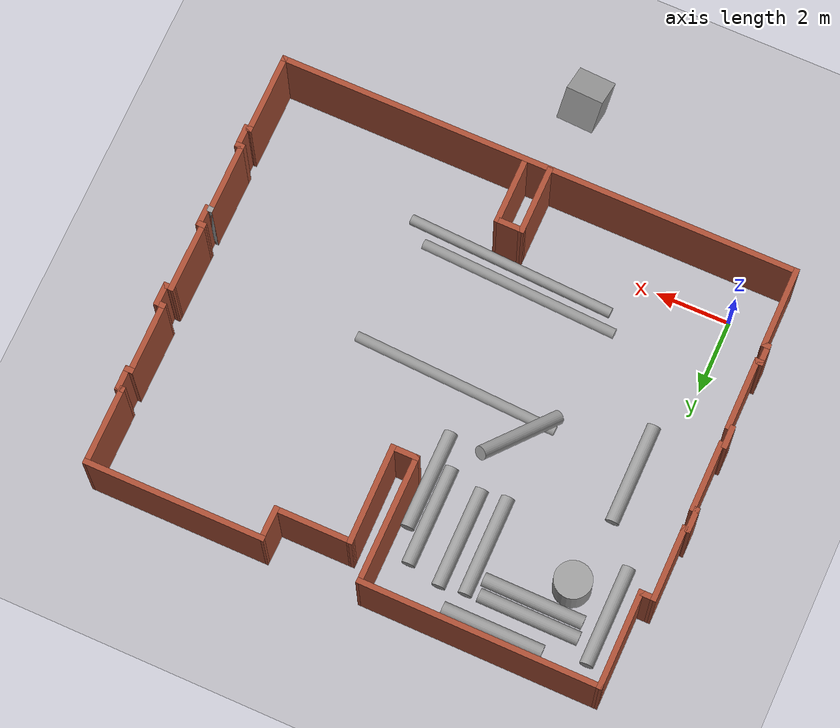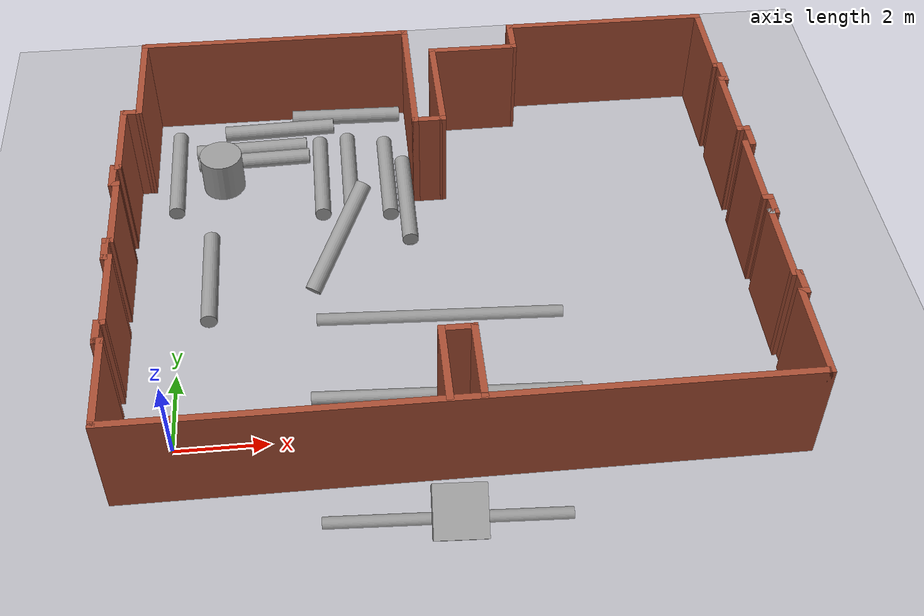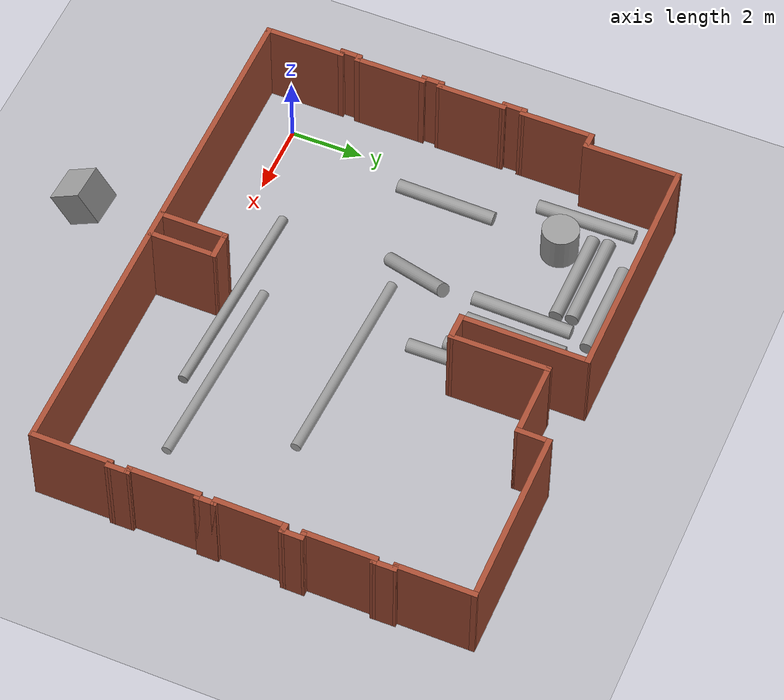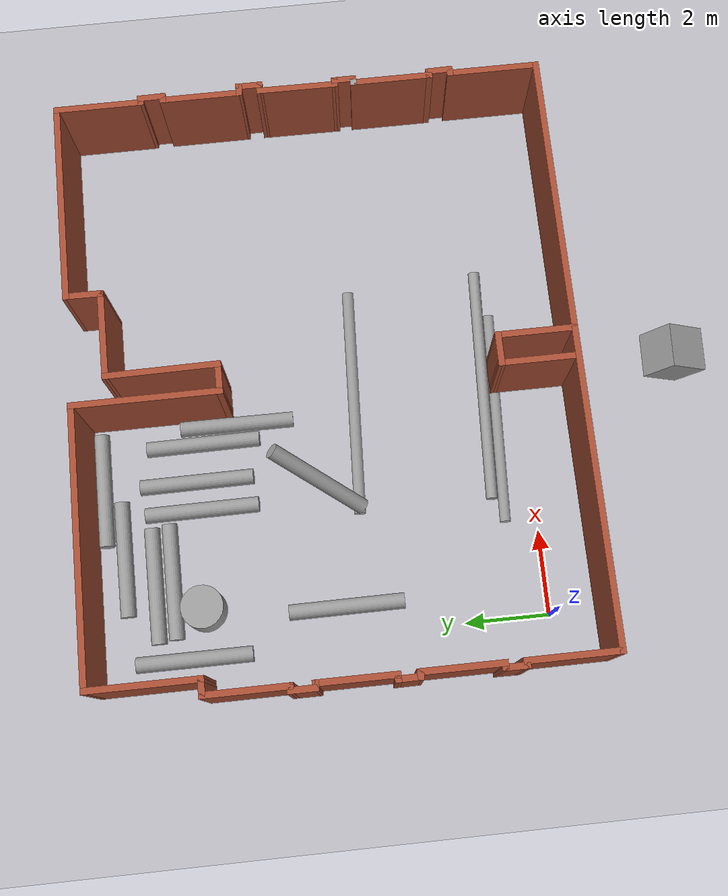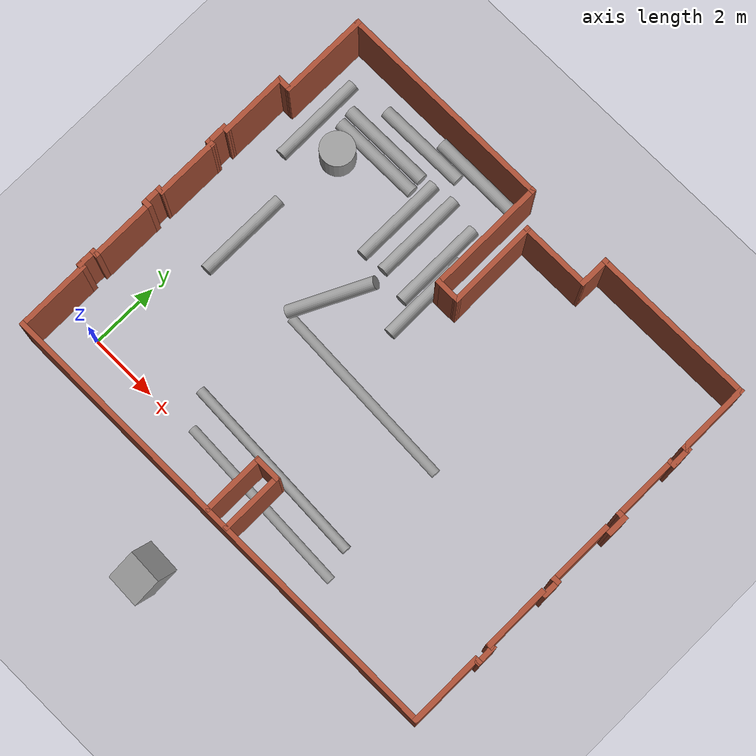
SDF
<sdf version="1.6">
 <world name="default">
  <light name="sun" type="directional">
   <pose>0 0 10 0 -0 0</pose>
   <diffuse>0.8 0.8 0.8 1</diffuse>
   <specular>0.2 0.2 0.2 1</specular>
   <attenuation>
    <range>1000</range>
    <constant>0.9</constant>
    <linear>0.01</linear>
    <quadratic>0.001</quadratic>
   </attenuation>
   <direction>0.5 0.1 -0.9</direction>
  </light>
  <scene><ambient>0.4 0.4 0.4 1</ambient><background>0.7 0.7 0.7 1</background><shadows>1</shadows></scene>
  <physics name="default_physics" default="0" type="ode">
   <max_step_size>0.01</max_step_size>
   <real_time_factor>1</real_time_factor>
   <real_time_update_rate>100</real_time_update_rate>
  </physics>
  <model name="ground_plane_0">
   <static>1</static>
   <link name="link">
    <collision name="collision">
     <geometry><plane><normal>0 0 1</normal><size>100 100</size></plane></geometry>
     <surface><friction><ode><mu>100</mu><mu2>50</mu2></ode></friction></surface>
    </collision>
    <visual name="visual">
     <cast_shadows>0</cast_shadows>
     <geometry><plane><normal>0 0 1</normal><size>100 100</size></plane></geometry>
     <material>
      <script><uri>file://media/materials/scripts/gazebo.material</uri><name>Gazebo/Grey</name></script>
     </material>
    </visual>
    <velocity_decay><linear>0</linear><angular>0</angular></velocity_decay>
   </link>
   <pose>0.497681 0 0 0 -0 0</pose>
  </model>
  <gravity>0 0 -9.8</gravity>
  <magnetic_field>6e-06 2.3e-05 -4.2e-05</magnetic_field>
  <atmosphere type="adiabatic"/>
  <spherical_coordinates>
   <surface_model>EARTH_WGS84</surface_model>
   <latitude_deg>0</latitude_deg>
   <longitude_deg>0</longitude_deg>
   <elevation>0</elevation>
   <heading_deg>0</heading_deg>
  </spherical_coordinates>
  <model name="Arsenal">
   <pose>5.95891 4.69363 0 0 -0 0</pose>
   <link name="Wall_101">
    <collision name="Wall_101_Collision">
     <geometry><box><size>0.310737 0.15 2.5</size></box></geometry>
     <pose>0 0 1.25 0 -0 0</pose>
    </collision>
    <visual name="Wall_101_Visual">
     <pose>0 0 1.25 0 -0 0</pose>
     <geometry><box><size>0.310737 0.15 2.5</size></box></geometry>
     <material>
      <script><uri>file://media/materials/scripts/gazebo.material</uri><name>Gazebo/Bricks</name></script>
      <ambient>1 1 1 1</ambient>
     </material>
     <meta><layer>0</layer></meta>
    </visual>
    <pose>7.10119 1.39533 0 0 0 -0.032025</pose>
   </link>
   <link name="Wall_103">
    <collision name="Wall_103_Collision">
     <geometry><box><size>0.30967 0.15 2.5</size></box></geometry>
     <pose>0 0 1.25 0 -0 0</pose>
    </collision>
    <visual name="Wall_103_Visual">
     <pose>0 0 1.25 0 -0 0</pose>
     <geometry><box><size>0.30967 0.15 2.5</size></box></geometry>
     <material>
      <script><uri>file://media/materials/scripts/gazebo.material</uri><name>Gazebo/Bricks</name></script>
      <ambient>1 1 1 1</ambient>
     </material>
     <meta><layer>0</layer></meta>
    </visual>
    <pose>7.10169 0.894256 0 0 0 -0.018748</pose>
   </link>
   <link name="Wall_105">
    <collision name="Wall_105_Collision">
     <geometry><box><size>0.25 0.15 2.5</size></box></geometry>
     <pose>0 0 1.25 0 -0 0</pose>
    </collision>
    <visual name="Wall_105_Visual">
     <pose>0 0 1.25 0 -0 0</pose>
     <geometry><box><size>0.25 0.15 2.5</size></box></geometry>
     <material>
      <script><uri>file://media/materials/scripts/gazebo.material</uri><name>Gazebo/Bricks</name></script>
      <ambient>1 1 1 1</ambient>
     </material>
     <meta><layer>0</layer></meta>
    </visual>
    <pose>7.0596 -0.929033 0 0 -0 0</pose>
   </link>
   <link name="Wall_109">
    <collision name="Wall_109_Collision">
     <geometry><box><size>0.25 0.15 2.5</size></box></geometry>
     <pose>0 0 1.25 0 -0 0</pose>
    </collision>
    <visual name="Wall_109_Visual">
     <pose>0 0 1.25 0 -0 0</pose>
     <geometry><box><size>0.25 0.15 2.5</size></box></geometry>
     <material>
      <script><uri>file://media/materials/scripts/gazebo.material</uri><name>Gazebo/Bricks</name></script>
      <ambient>1 1 1 1</ambient>
     </material>
     <meta><layer>0</layer></meta>
    </visual>
    <pose>7.0596 -3.23382 0 0 -0 0</pose>
   </link>
   <link name="Wall_117">
    <collision name="Wall_117_Collision">
     <geometry><box><size>0.15 0.15 2.5</size></box></geometry>
     <pose>0 0 1.25 0 -0 0</pose>
    </collision>
    <visual name="Wall_117_Visual">
     <pose>0 0 1.25 0 -0 0</pose>
     <geometry><box><size>0.15 0.15 2.5</size></box></geometry>
     <material>
      <script><uri>file://media/materials/scripts/gazebo.material</uri><name>Gazebo/Grey</name></script>
      <ambient>1 1 1 1</ambient>
     </material>
     <meta><layer>0</layer></meta>
    </visual>
    <pose>7.0096 -1.38382 0 0 -0 0</pose>
   </link>
   <link name="Wall_126">
    <collision name="Wall_126_Collision">
     <geometry><box><size>0.65 0.15 2.5</size></box></geometry>
     <pose>0 0 1.25 0 -0 0</pose>
    </collision>
    <visual name="Wall_126_Visual">
     <pose>0 0 1.25 0 -0 0</pose>
     <geometry><box><size>0.65 0.15 2.5</size></box></geometry>
     <material>
      <script><uri>file://media/materials/scripts/gazebo.material</uri><name>Gazebo/Bricks</name></script>
      <ambient>1 1 1 1</ambient>
     </material>
     <meta><layer>0</layer></meta>
    </visual>
    <pose>7.18169 1.14276 0 0 -0 1.5708</pose>
   </link>
   <link name="Wall_133">
    <collision name="Wall_133_Collision">
     <geometry><box><size>0.681888 0.15 2.5</size></box></geometry>
     <pose>0 0 1.25 0 -0 0</pose>
    </collision>
    <visual name="Wall_133_Visual">
     <pose>0 0 1.25 0 -0 0</pose>
     <geometry><box><size>0.681888 0.15 2.5</size></box></geometry>
     <material>
      <script><uri>file://media/materials/scripts/gazebo.material</uri><name>Gazebo/Bricks</name></script>
      <ambient>1 1 1 1</ambient>
     </material>
     <meta><layer>0</layer></meta>
    </visual>
    <pose>7.11719 3.51383 0 0 0 -1.55766</pose>
   </link>
   <link name="Wall_136">
    <collision name="Wall_136_Collision">
     <geometry><box><size>2 0.15 2.5</size></box></geometry>
     <pose>0 0 1.25 0 -0 0</pose>
    </collision>
    <visual name="Wall_136_Visual">
     <pose>0 0 1.25 0 -0 0</pose>
     <geometry><box><size>2 0.15 2.5</size></box></geometry>
     <material>
      <script><uri>file://media/materials/scripts/gazebo.material</uri><name>Gazebo/Bricks</name></script>
      <ambient>1 1 1 1</ambient>
     </material>
     <meta><layer>0</layer></meta>
    </visual>
    <pose>7.0096 -2.30882 0 0 -0 1.5708</pose>
   </link>
   <link name="Wall_137">
    <collision name="Wall_137_Collision">
     <geometry><box><size>0.15 0.15 2.5</size></box></geometry>
     <pose>0 0 1.25 0 -0 0</pose>
    </collision>
    <visual name="Wall_137_Visual">
     <pose>0 0 1.25 0 -0 0</pose>
     <geometry><box><size>0.15 0.15 2.5</size></box></geometry>
     <material>
      <script><uri>file://media/materials/scripts/gazebo.material</uri><name>Gazebo/Grey</name></script>
      <ambient>1 1 1 1</ambient>
     </material>
     <meta><layer>0</layer></meta>
    </visual>
    <pose>7.0096 -1.38382 0 0 -0 0</pose>
   </link>
   <link name="Wall_139">
    <collision name="Wall_139_Collision">
     <geometry><box><size>0.25 0.15 2.5</size></box></geometry>
     <pose>0 0 1.25 0 -0 0</pose>
    </collision>
    <visual name="Wall_139_Visual">
     <pose>0 0 1.25 0 -0 0</pose>
     <geometry><box><size>0.25 0.15 2.5</size></box></geometry>
     <material>
      <script><uri>file://media/materials/scripts/gazebo.material</uri><name>Gazebo/Bricks</name></script>
      <ambient>1 1 1 1</ambient>
     </material>
     <meta><layer>0</layer></meta>
    </visual>
    <pose>7.0596 -1.38382 0 0 -0 0</pose>
   </link>
   <link name="Wall_140">
    <collision name="Wall_140_Collision">
     <geometry><box><size>0.604786 0.15 2.5</size></box></geometry>
     <pose>0 0 1.25 0 -0 0</pose>
    </collision>
    <visual name="Wall_140_Visual">
     <pose>0 0 1.25 0 -0 0</pose>
     <geometry><box><size>0.604786 0.15 2.5</size></box></geometry>
     <material>
      <script><uri>file://media/materials/scripts/gazebo.material</uri><name>Gazebo/Bricks</name></script>
      <ambient>1 1 1 1</ambient>
     </material>
     <meta><layer>0</layer></meta>
    </visual>
    <pose>7.1096 -1.15643 0 0 -0 1.5708</pose>
   </link>
   <link name="Wall_144">
    <collision name="Wall_144_Collision">
     <geometry><box><size>0.25 0.15 2.5</size></box></geometry>
     <pose>0 0 1.25 0 -0 0</pose>
    </collision>
    <visual name="Wall_144_Visual">
     <pose>0 0 1.25 0 -0 0</pose>
     <geometry><box><size>0.25 0.15 2.5</size></box></geometry>
     <material>
      <script><uri>file://media/materials/scripts/gazebo.material</uri><name>Gazebo/Bricks</name></script>
      <ambient>1 1 1 1</ambient>
     </material>
     <meta><layer>0</layer></meta>
    </visual>
    <pose>7.06686 -3.74301 0 0 -0 0</pose>
   </link>
   <link name="Wall_145">
    <collision name="Wall_145_Collision">
     <geometry><box><size>0.659247 0.15 2.5</size></box></geometry>
     <pose>0 0 1.25 0 -0 0</pose>
    </collision>
    <visual name="Wall_145_Visual">
     <pose>0 0 1.25 0 -0 0</pose>
     <geometry><box><size>0.659247 0.15 2.5</size></box></geometry>
     <material>
      <script><uri>file://media/materials/scripts/gazebo.material</uri><name>Gazebo/Bricks</name></script>
      <ambient>1 1 1 1</ambient>
     </material>
     <meta><layer>0</layer></meta>
    </visual>
    <pose>7.11323 -3.48842 0 0 -0 1.58505</pose>
   </link>
   <link name="Wall_38">
    <collision name="Wall_38_Collision">
     <geometry><box><size>14.25 0.15 2.5</size></box></geometry>
     <pose>0 0 1.25 0 -0 0</pose>
    </collision>
    <visual name="Wall_38_Visual">
     <pose>0 0 1.25 0 -0 0</pose>
     <geometry><box><size>14.25 0.15 2.5</size></box></geometry>
     <material>
      <script><uri>file://media/materials/scripts/gazebo.material</uri><name>Gazebo/Bricks</name></script>
      <ambient>1 1 1 1</ambient>
     </material>
     <meta><layer>0</layer></meta>
    </visual>
    <pose>-0.03314 -5.84301 0 0 -0 0</pose>
   </link>
   <link name="Wall_40">
    <collision name="Wall_40_Collision">
     <geometry><box><size>1.9 0.15 2.5</size></box></geometry>
     <pose>0 0 1.25 0 -0 0</pose>
    </collision>
    <visual name="Wall_40_Visual">
     <pose>0 0 1.25 0 -0 0</pose>
     <geometry><box><size>1.9 0.15 2.5</size></box></geometry>
     <material>
      <script><uri>file://media/materials/scripts/gazebo.material</uri><name>Gazebo/Bricks</name></script>
      <ambient>1 1 1 1</ambient>
     </material>
     <meta><layer>0</layer></meta>
    </visual>
    <pose>0.294848 -4.93473 0 0 0 -1.5708</pose>
   </link>
   <link name="Wall_42">
    <collision name="Wall_42_Collision">
     <geometry><box><size>1.9 0.15 2.5</size></box></geometry>
     <pose>0 0 1.25 0 -0 0</pose>
    </collision>
    <visual name="Wall_42_Visual">
     <pose>0 0 1.25 0 -0 0</pose>
     <geometry><box><size>1.9 0.15 2.5</size></box></geometry>
     <material>
      <script><uri>file://media/materials/scripts/gazebo.material</uri><name>Gazebo/Bricks</name></script>
      <ambient>1 1 1 1</ambient>
     </material>
     <meta><layer>0</layer></meta>
    </visual>
    <pose>-0.372183 -4.93374 0 0 -0 1.5708</pose>
   </link>
   <link name="Wall_44">
    <collision name="Wall_44_Collision">
     <geometry><box><size>0.817031 0.15 2.5</size></box></geometry>
     <pose>0 0 1.25 0 -0 0</pose>
    </collision>
    <visual name="Wall_44_Visual">
     <pose>0 0 1.25 0 -0 0</pose>
     <geometry><box><size>0.817031 0.15 2.5</size></box></geometry>
     <material>
      <script><uri>file://media/materials/scripts/gazebo.material</uri><name>Gazebo/Bricks</name></script>
      <ambient>1 1 1 1</ambient>
     </material>
     <meta><layer>0</layer></meta>
    </visual>
    <pose>-0.038668 -4.05924 0 0 0 -0.00148</pose>
   </link>
   <link name="Wall_47">
    <collision name="Wall_47_Collision">
     <geometry><box><size>2.25 0.15 2.5</size></box></geometry>
     <pose>0 0 1.25 0 -0 0</pose>
    </collision>
    <visual name="Wall_47_Visual">
     <pose>0 0 1.25 0 -0 0</pose>
     <geometry><box><size>2.25 0.15 2.5</size></box></geometry>
     <material>
      <script><uri>file://media/materials/scripts/gazebo.material</uri><name>Gazebo/Bricks</name></script>
      <ambient>1 1 1 1</ambient>
     </material>
     <meta><layer>0</layer></meta>
    </visual>
    <pose>-7.08314 -4.79301 0 0 -0 1.5708</pose>
   </link>
   <link name="Wall_49">
    <collision name="Wall_49_Collision">
     <geometry><box><size>2 0.15 2.5</size></box></geometry>
     <pose>0 0 1.25 0 -0 0</pose>
    </collision>
    <visual name="Wall_49_Visual">
     <pose>0 0 1.25 0 -0 0</pose>
     <geometry><box><size>2 0.15 2.5</size></box></geometry>
     <material>
      <script><uri>file://media/materials/scripts/gazebo.material</uri><name>Gazebo/Bricks</name></script>
      <ambient>1 1 1 1</ambient>
     </material>
     <meta><layer>0</layer></meta>
    </visual>
    <pose>-7.07848 -2.34523 0 0 -0 1.5708</pose>
   </link>
   <link name="Wall_51">
    <collision name="Wall_51_Collision">
     <geometry><box><size>1.93928 0.15 2.5</size></box></geometry>
     <pose>0 0 1.25 0 -0 0</pose>
    </collision>
    <visual name="Wall_51_Visual">
     <pose>0 0 1.25 0 -0 0</pose>
     <geometry><box><size>1.93928 0.15 2.5</size></box></geometry>
     <material>
      <script><uri>file://media/materials/scripts/gazebo.material</uri><name>Gazebo/Bricks</name></script>
      <ambient>1 1 1 1</ambient>
     </material>
     <meta><layer>0</layer></meta>
    </visual>
    <pose>-7.08173 -0.037269 0 0 -0 1.56958</pose>
   </link>
   <link name="Wall_53">
    <collision name="Wall_53_Collision">
     <geometry><box><size>2.06072 0.15 2.5</size></box></geometry>
     <pose>0 0 1.25 0 -0 0</pose>
    </collision>
    <visual name="Wall_53_Visual">
     <pose>0 0 1.25 0 -0 0</pose>
     <geometry><box><size>2.06072 0.15 2.5</size></box></geometry>
     <material>
      <script><uri>file://media/materials/scripts/gazebo.material</uri><name>Gazebo/Bricks</name></script>
      <ambient>1 1 1 1</ambient>
     </material>
     <meta><layer>0</layer></meta>
    </visual>
    <pose>-7.08243 2.35744 0 0 -0 1.57193</pose>
   </link>
   <link name="Wall_55">
    <collision name="Wall_55_Collision">
     <geometry><box><size>0.5 0.15 2.5</size></box></geometry>
     <pose>0 0 1.25 0 -0 0</pose>
    </collision>
    <visual name="Wall_55_Visual">
     <pose>0 0 1.25 0 -0 0</pose>
     <geometry><box><size>0.5 0.15 2.5</size></box></geometry>
     <material>
      <script><uri>file://media/materials/scripts/gazebo.material</uri><name>Gazebo/Bricks</name></script>
      <ambient>1 1 1 1</ambient>
     </material>
     <meta><layer>0</layer></meta>
    </visual>
    <pose>-6.90841 3.31278 0 0 0 -0.000114</pose>
   </link>
   <link name="Wall_57">
    <collision name="Wall_57_Collision">
     <geometry><box><size>2.68 0.15 2.5</size></box></geometry>
     <pose>0 0 1.25 0 -0 0</pose>
    </collision>
    <visual name="Wall_57_Visual">
     <pose>0 0 1.25 0 -0 0</pose>
     <geometry><box><size>2.68 0.15 2.5</size></box></geometry>
     <material>
      <script><uri>file://media/materials/scripts/gazebo.material</uri><name>Gazebo/Bricks</name></script>
      <ambient>1 1 1 1</ambient>
     </material>
     <meta><layer>0</layer></meta>
    </visual>
    <pose>-6.73331 4.57776 0 0 -0 1.5708</pose>
   </link>
   <link name="Wall_58">
    <collision name="Wall_58_Collision">
     <geometry><box><size>6.51682 0.15 2.5</size></box></geometry>
     <pose>0 0 1.25 0 -0 0</pose>
    </collision>
    <visual name="Wall_58_Visual">
     <pose>0 0 1.25 0 -0 0</pose>
     <geometry><box><size>6.51682 0.15 2.5</size></box></geometry>
     <material>
      <script><uri>file://media/materials/scripts/gazebo.material</uri><name>Gazebo/Bricks</name></script>
      <ambient>1 1 1 1</ambient>
     </material>
     <meta><layer>0</layer></meta>
    </visual>
    <pose>-3.54981 5.83176 0 0 0 -0.003455</pose>
   </link>
   <link name="Wall_59">
    <collision name="Wall_59_Collision">
     <geometry><box><size>3.55 0.15 2.5</size></box></geometry>
     <pose>0 0 1.25 0 -0 0</pose>
    </collision>
    <visual name="Wall_59_Visual">
     <pose>0 0 1.25 0 -0 0</pose>
     <geometry><box><size>3.55 0.15 2.5</size></box></geometry>
     <material>
      <script><uri>file://media/materials/scripts/gazebo.material</uri><name>Gazebo/Bricks</name></script>
      <ambient>1 1 1 1</ambient>
     </material>
     <meta><layer>0</layer></meta>
    </visual>
    <pose>-0.366308 4.12076 0 0 0 -1.5708</pose>
   </link>
   <link name="Wall_61">
    <collision name="Wall_61_Collision">
     <geometry><box><size>0.790055 0.15 2.5</size></box></geometry>
     <pose>0 0 1.25 0 -0 0</pose>
    </collision>
    <visual name="Wall_61_Visual">
     <pose>0 0 1.25 0 -0 0</pose>
     <geometry><box><size>0.790055 0.15 2.5</size></box></geometry>
     <material>
      <script><uri>file://media/materials/scripts/gazebo.material</uri><name>Gazebo/Bricks</name></script>
      <ambient>1 1 1 1</ambient>
     </material>
     <meta><layer>0</layer></meta>
    </visual>
    <pose>-0.046308 2.42076 0 0 -0 0</pose>
   </link>
   <link name="Wall_62">
    <collision name="Wall_62_Collision">
     <geometry><box><size>2.73364 0.15 2.5</size></box></geometry>
     <pose>0 0 1.25 0 -0 0</pose>
    </collision>
    <visual name="Wall_62_Visual">
     <pose>0 0 1.25 0 -0 0</pose>
     <geometry><box><size>2.73364 0.15 2.5</size></box></geometry>
     <material>
      <script><uri>file://media/materials/scripts/gazebo.material</uri><name>Gazebo/Bricks</name></script>
      <ambient>1 1 1 1</ambient>
     </material>
     <meta><layer>0</layer></meta>
    </visual>
    <pose>0.261692 3.71276 0 0 -0 1.58008</pose>
   </link>
   <link name="Wall_64">
    <collision name="Wall_64_Collision">
     <geometry><box><size>0.15 0.15 2.5</size></box></geometry>
     <pose>0 0 1.25 0 -0 0</pose>
    </collision>
    <visual name="Wall_64_Visual">
     <pose>0 0 1.25 0 -0 0</pose>
     <geometry><box><size>0.15 0.15 2.5</size></box></geometry>
     <material>
      <script><uri>file://media/materials/scripts/gazebo.material</uri><name>Gazebo/Bricks</name></script>
      <ambient>1 1 1 1</ambient>
     </material>
     <meta><layer>0</layer></meta>
    </visual>
    <pose>2.24969 5.00476 0 0 -0 0</pose>
   </link>
   <link name="Wall_65">
    <collision name="Wall_65_Collision">
     <geometry><box><size>2.15 0.15 2.5</size></box></geometry>
     <pose>0 0 1.25 0 -0 0</pose>
    </collision>
    <visual name="Wall_65_Visual">
     <pose>0 0 1.25 0 -0 0</pose>
     <geometry><box><size>2.15 0.15 2.5</size></box></geometry>
     <material>
      <script><uri>file://media/materials/scripts/gazebo.material</uri><name>Gazebo/Bricks</name></script>
      <ambient>1 1 1 1</ambient>
     </material>
     <meta><layer>0</layer></meta>
    </visual>
    <pose>1.24969 5.00476 0 0 -0 3.14159</pose>
   </link>
   <link name="Wall_69">
    <collision name="Wall_69_Collision">
     <geometry><box><size>0.25 0.15 2.5</size></box></geometry>
     <pose>0 0 1.25 0 -0 0</pose>
    </collision>
    <visual name="Wall_69_Visual">
     <pose>0 0 1.25 0 -0 0</pose>
     <geometry><box><size>0.25 0.15 2.5</size></box></geometry>
     <material>
      <script><uri>file://media/materials/scripts/gazebo.material</uri><name>Gazebo/Bricks</name></script>
      <ambient>1 1 1 1</ambient>
     </material>
     <meta><layer>0</layer></meta>
    </visual>
    <pose>-7.13135 1.40208 0 0 -0 3.14159</pose>
   </link>
   <link name="Wall_7">
    <collision name="Wall_7_Collision">
     <geometry><box><size>0.955116 0.15 2.5</size></box></geometry>
     <pose>0 0 1.25 0 -0 0</pose>
    </collision>
    <visual name="Wall_7_Visual">
     <pose>0 0 1.25 0 -0 0</pose>
     <geometry><box><size>0.955116 0.15 2.5</size></box></geometry>
     <material>
      <script><uri>file://media/materials/scripts/gazebo.material</uri><name>Gazebo/Bricks</name></script>
      <ambient>1 1 1 1</ambient>
     </material>
     <meta><layer>0</layer></meta>
    </visual>
    <pose>2.25469 5.40726 0 0 -0 1.55838</pose>
   </link>
   <link name="Wall_71">
    <collision name="Wall_71_Collision">
     <geometry><box><size>0.25 0.15 2.5</size></box></geometry>
     <pose>0 0 1.25 0 -0 0</pose>
    </collision>
    <visual name="Wall_71_Visual">
     <pose>0 0 1.25 0 -0 0</pose>
     <geometry><box><size>0.25 0.15 2.5</size></box></geometry>
     <material>
      <script><uri>file://media/materials/scripts/gazebo.material</uri><name>Gazebo/Bricks</name></script>
      <ambient>1 1 1 1</ambient>
     </material>
     <meta><layer>0</layer></meta>
    </visual>
    <pose>-7.13064 0.857371 0 0 -0 3.14159</pose>
   </link>
   <link name="Wall_72">
    <collision name="Wall_72_Collision">
     <geometry><box><size>0.694706 0.15 2.5</size></box></geometry>
     <pose>0 0 1.25 0 -0 0</pose>
    </collision>
    <visual name="Wall_72_Visual">
     <pose>0 0 1.25 0 -0 0</pose>
     <geometry><box><size>0.694706 0.15 2.5</size></box></geometry>
     <material>
      <script><uri>file://media/materials/scripts/gazebo.material</uri><name>Gazebo/Bricks</name></script>
      <ambient>1 1 1 1</ambient>
     </material>
     <meta><layer>0</layer></meta>
    </visual>
    <pose>-7.181 1.12972 0 0 -0 1.57209</pose>
   </link>
   <link name="Wall_74">
    <collision name="Wall_74_Collision">
     <geometry><box><size>0.25 0.15 2.5</size></box></geometry>
     <pose>0 0 1.25 0 -0 0</pose>
    </collision>
    <visual name="Wall_74_Visual">
     <pose>0 0 1.25 0 -0 0</pose>
     <geometry><box><size>0.25 0.15 2.5</size></box></geometry>
     <material>
      <script><uri>file://media/materials/scripts/gazebo.material</uri><name>Gazebo/Bricks</name></script>
      <ambient>1 1 1 1</ambient>
     </material>
     <meta><layer>0</layer></meta>
    </visual>
    <pose>-7.13281 -0.93191 0 0 -0 3.14159</pose>
   </link>
   <link name="Wall_76">
    <collision name="Wall_76_Collision">
     <geometry><box><size>0.25 0.15 2.5</size></box></geometry>
     <pose>0 0 1.25 0 -0 0</pose>
    </collision>
    <visual name="Wall_76_Visual">
     <pose>0 0 1.25 0 -0 0</pose>
     <geometry><box><size>0.25 0.15 2.5</size></box></geometry>
     <material>
      <script><uri>file://media/materials/scripts/gazebo.material</uri><name>Gazebo/Bricks</name></script>
      <ambient>1 1 1 1</ambient>
     </material>
     <meta><layer>0</layer></meta>
    </visual>
    <pose>-7.12847 -1.42023 0 0 -0 3.14159</pose>
   </link>
   <link name="Wall_77">
    <collision name="Wall_77_Collision">
     <geometry><box><size>0.63834 0.15 2.5</size></box></geometry>
     <pose>0 0 1.25 0 -0 0</pose>
    </collision>
    <visual name="Wall_77_Visual">
     <pose>0 0 1.25 0 -0 0</pose>
     <geometry><box><size>0.63834 0.15 2.5</size></box></geometry>
     <material>
      <script><uri>file://media/materials/scripts/gazebo.material</uri><name>Gazebo/Bricks</name></script>
      <ambient>1 1 1 1</ambient>
     </material>
     <meta><layer>0</layer></meta>
    </visual>
    <pose>-7.18064 -1.17607 0 0 -0 1.57968</pose>
   </link>
   <link name="Wall_79">
    <collision name="Wall_79_Collision">
     <geometry><box><size>0.25 0.15 2.5</size></box></geometry>
     <pose>0 0 1.25 0 -0 0</pose>
    </collision>
    <visual name="Wall_79_Visual">
     <pose>0 0 1.25 0 -0 0</pose>
     <geometry><box><size>0.25 0.15 2.5</size></box></geometry>
     <material>
      <script><uri>file://media/materials/scripts/gazebo.material</uri><name>Gazebo/Bricks</name></script>
      <ambient>1 1 1 1</ambient>
     </material>
     <meta><layer>0</layer></meta>
    </visual>
    <pose>-7.13314 -3.74301 0 0 -0 3.14159</pose>
   </link>
   <link name="Wall_8">
    <collision name="Wall_8_Collision">
     <geometry><box><size>4.90324 0.15 2.5</size></box></geometry>
     <pose>0 0 1.25 0 -0 0</pose>
    </collision>
    <visual name="Wall_8_Visual">
     <pose>0 0 1.25 0 -0 0</pose>
     <geometry><box><size>4.90324 0.15 2.5</size></box></geometry>
     <material>
      <script><uri>file://media/materials/scripts/gazebo.material</uri><name>Gazebo/Bricks</name></script>
      <ambient>1 1 1 1</ambient>
     </material>
     <meta><layer>0</layer></meta>
    </visual>
    <pose>4.63619 5.80976 0 0 -0 0</pose>
   </link>
   <link name="Wall_81">
    <collision name="Wall_81_Collision">
     <geometry><box><size>0.25 0.15 2.5</size></box></geometry>
     <pose>0 0 1.25 0 -0 0</pose>
    </collision>
    <visual name="Wall_81_Visual">
     <pose>0 0 1.25 0 -0 0</pose>
     <geometry><box><size>0.25 0.15 2.5</size></box></geometry>
     <material>
      <script><uri>file://media/materials/scripts/gazebo.material</uri><name>Gazebo/Bricks</name></script>
      <ambient>1 1 1 1</ambient>
     </material>
     <meta><layer>0</layer></meta>
    </visual>
    <pose>-7.12847 -3.27023 0 0 -0 3.14159</pose>
   </link>
   <link name="Wall_82">
    <collision name="Wall_82_Collision">
     <geometry><box><size>0.622807 0.15 2.5</size></box></geometry>
     <pose>0 0 1.25 0 -0 0</pose>
    </collision>
    <visual name="Wall_82_Visual">
     <pose>0 0 1.25 0 -0 0</pose>
     <geometry><box><size>0.622807 0.15 2.5</size></box></geometry>
     <material>
      <script><uri>file://media/materials/scripts/gazebo.material</uri><name>Gazebo/Bricks</name></script>
      <ambient>1 1 1 1</ambient>
     </material>
     <meta><layer>0</layer></meta>
    </visual>
    <pose>-7.18081 -3.50662 0 0 0 -1.58066</pose>
   </link>
   <link name="Wall_84">
    <collision name="Wall_84_Collision">
     <geometry><box><size>2.25 0.15 2.5</size></box></geometry>
     <pose>0 0 1.25 0 -0 0</pose>
    </collision>
    <visual name="Wall_84_Visual">
     <pose>0 0 1.25 0 -0 0</pose>
     <geometry><box><size>2.25 0.15 2.5</size></box></geometry>
     <material>
      <script><uri>file://media/materials/scripts/gazebo.material</uri><name>Gazebo/Bricks</name></script>
      <ambient>1 1 1 1</ambient>
     </material>
     <meta><layer>0</layer></meta>
    </visual>
    <pose>7.01686 -4.79301 0 0 -0 1.5708</pose>
   </link>
   <link name="Wall_89">
    <collision name="Wall_89_Collision">
     <geometry><box><size>1.97483 0.15 2.5</size></box></geometry>
     <pose>0 0 1.25 0 -0 0</pose>
    </collision>
    <visual name="Wall_89_Visual">
     <pose>0 0 1.25 0 -0 0</pose>
     <geometry><box><size>1.97483 0.15 2.5</size></box></geometry>
     <material>
      <script><uri>file://media/materials/scripts/gazebo.material</uri><name>Gazebo/Bricks</name></script>
      <ambient>1 1 1 1</ambient>
     </material>
     <meta><layer>0</layer></meta>
    </visual>
    <pose>7.01565 -0.016639 0 0 -0 1.56417</pose>
   </link>
   <link name="Wall_91">
    <collision name="Wall_91_Collision">
     <geometry><box><size>2 0.15 2.5</size></box></geometry>
     <pose>0 0 1.25 0 -0 0</pose>
    </collision>
    <visual name="Wall_91_Visual">
     <pose>0 0 1.25 0 -0 0</pose>
     <geometry><box><size>2 0.15 2.5</size></box></geometry>
     <material>
      <script><uri>file://media/materials/scripts/gazebo.material</uri><name>Gazebo/Bricks</name></script>
      <ambient>1 1 1 1</ambient>
     </material>
     <meta><layer>0</layer></meta>
    </visual>
    <pose>7.02068 2.32291 0 0 -0 1.5708</pose>
   </link>
   <link name="Wall_95">
    <collision name="Wall_95_Collision">
     <geometry><box><size>2.18 0.15 2.5</size></box></geometry>
     <pose>0 0 1.25 0 -0 0</pose>
    </collision>
    <visual name="Wall_95_Visual">
     <pose>0 0 1.25 0 -0 0</pose>
     <geometry><box><size>2.18 0.15 2.5</size></box></geometry>
     <material>
      <script><uri>file://media/materials/scripts/gazebo.material</uri><name>Gazebo/Bricks</name></script>
      <ambient>1 1 1 1</ambient>
     </material>
     <meta><layer>0</layer></meta>
    </visual>
    <pose>7.01319 4.79476 0 0 0 -1.5703</pose>
   </link>
   <link name="Wall_97">
    <collision name="Wall_97_Collision">
     <geometry><box><size>0.25 0.15 2.5</size></box></geometry>
     <pose>0 0 1.25 0 -0 0</pose>
    </collision>
    <visual name="Wall_97_Visual">
     <pose>0 0 1.25 0 -0 0</pose>
     <geometry><box><size>0.25 0.15 2.5</size></box></geometry>
     <material>
      <script><uri>file://media/materials/scripts/gazebo.material</uri><name>Gazebo/Bricks</name></script>
      <ambient>1 1 1 1</ambient>
     </material>
     <meta><layer>0</layer></meta>
    </visual>
    <pose>7.06369 3.77976 0 0 -0 0</pose>
   </link>
   <link name="Wall_99">
    <collision name="Wall_99_Collision">
     <geometry><box><size>0.25 0.15 2.5</size></box></geometry>
     <pose>0 0 1.25 0 -0 0</pose>
    </collision>
    <visual name="Wall_99_Visual">
     <pose>0 0 1.25 0 -0 0</pose>
     <geometry><box><size>0.25 0.15 2.5</size></box></geometry>
     <material>
      <script><uri>file://media/materials/scripts/gazebo.material</uri><name>Gazebo/Bricks</name></script>
      <ambient>1 1 1 1</ambient>
     </material>
     <meta><layer>0</layer></meta>
    </visual>
    <pose>7.07068 3.24791 0 0 -0 0</pose>
   </link>
   <static>1</static>
  </model>
  <model name="Test_room">
   <link name="link">
    <pose>3.81649 0.798974 0.000146 0 -0 0</pose>
    <inertial>
     <mass>0.46727</mass>
     <inertia>
      <ixx>1.28022</ixx>
      <ixy>0</ixy>
      <ixz>0</ixz>
      <iyy>1.28022</iyy>
      <iyz>0</iyz>
      <izz>0.00476417</izz>
     </inertia>
    </inertial>
    <visual name="visual">
     <geometry><cylinder><radius>0.142799</radius><length>5.72855</length></cylinder></geometry>
     <material>
      <script><name>Gazebo/Grey</name><uri>file://media/materials/scripts/gazebo.material</uri></script>
      <shader type="pixel"/>
      <ambient>0.3 0.3 0.3 1</ambient>
      <diffuse>0.7 0.7 0.7 1</diffuse>
      <specular>0.01 0.01 0.01 1</specular>
      <emissive>0 0 0 1</emissive>
     </material>
    </visual>
    <collision name="collision">
     <geometry><cylinder><radius>0.142799</radius><length>5.72855</length></cylinder></geometry>
     <surface>
      <friction>
       <ode><mu>1</mu><mu2>1</mu2><fdir1>0 0 0</fdir1><slip1>0</slip1><slip2>0</slip2></ode>
       <torsional>
        <coefficient>1</coefficient>
        <patch_radius>0</patch_radius>
        <surface_radius>0</surface_radius>
        <use_patch_radius>1</use_patch_radius>
        <ode><slip>0</slip></ode>
       </torsional>
      </friction>
      <bounce><restitution_coefficient>0</restitution_coefficient><threshold>1e+06</threshold></bounce>
      <contact>
       <collide_without_contact>0</collide_without_contact>
       <collide_without_contact_bitmask>1</collide_without_contact_bitmask>
       <collide_bitmask>1</collide_bitmask>
       <ode>
        <soft_cfm>0</soft_cfm>
        <soft_erp>0.2</soft_erp>
        <kp>1e+13</kp>
        <kd>1</kd>
        <max_vel>0.01</max_vel>
        <min_depth>0</min_depth>
       </ode>
       <bullet>
        <split_impulse>1</split_impulse>
        <split_impulse_penetration_threshold>-0.01</split_impulse_penetration_threshold>
        <soft_cfm>0</soft_cfm>
        <soft_erp>0.2</soft_erp>
        <kp>1e+13</kp>
        <kd>1</kd>
       </bullet>
      </contact>
     </surface>
    </collision>
   </link>
   <link name="link_0">
    <pose>7.72458 3.37708 0.001115 -4.8e-05 -4.8e-05 1e-06</pose>
    <inertial>
     <mass>1</mass>
     <inertia>
      <ixx>0.166667</ixx>
      <ixy>0</ixy>
      <ixz>0</ixz>
      <iyy>0.166667</iyy>
      <iyz>0</iyz>
      <izz>0.166667</izz>
     </inertia>
    </inertial>
    <visual name="visual">
     <geometry><box><size>1 1 1</size></box></geometry>
     <material>
      <lighting>1</lighting>
      <script><uri>file://media/materials/scripts/gazebo.material</uri><name>Gazebo/Grey</name></script>
      <shader type="pixel"/>
      <ambient>0.3 0.3 0.3 1</ambient>
      <diffuse>0.7 0.7 0.7 1</diffuse>
      <specular>0.01 0.01 0.01 1</specular>
      <emissive>0 0 0 1</emissive>
     </material>
    </visual>
    <collision name="collision">
     <geometry><box><size>1 1 1</size></box></geometry>
     <surface>
      <friction>
       <ode><mu>1</mu><mu2>1</mu2><fdir1>0 0 0</fdir1><slip1>0</slip1><slip2>0</slip2></ode>
       <torsional>
        <coefficient>1</coefficient>
        <patch_radius>0</patch_radius>
        <surface_radius>0</surface_radius>
        <use_patch_radius>1</use_patch_radius>
        <ode><slip>0</slip></ode>
       </torsional>
      </friction>
      <bounce><restitution_coefficient>0</restitution_coefficient><threshold>1e+06</threshold></bounce>
      <contact>
       <collide_without_contact>0</collide_without_contact>
       <collide_without_contact_bitmask>1</collide_without_contact_bitmask>
       <collide_bitmask>1</collide_bitmask>
       <ode>
        <soft_cfm>0</soft_cfm>
        <soft_erp>0.2</soft_erp>
        <kp>1e+13</kp>
        <kd>1</kd>
        <max_vel>0.01</max_vel>
        <min_depth>0</min_depth>
       </ode>
       <bullet>
        <split_impulse>1</split_impulse>
        <split_impulse_penetration_threshold>-0.01</split_impulse_penetration_threshold>
        <soft_cfm>0</soft_cfm>
        <soft_erp>0.2</soft_erp>
        <kp>1e+13</kp>
        <kd>1</kd>
       </bullet>
      </contact>
     </surface>
    </collision>
   </link>
   <link name="link_clone">
    <pose>1.218 -1.31339 0.000269 -4.8e-05 -4.8e-05 1e-06</pose>
    <inertial>
     <mass>0.46727</mass>
     <inertia>
      <ixx>1.28022</ixx>
      <ixy>0</ixy>
      <ixz>0</ixz>
      <iyy>1.28022</iyy>
      <iyz>0</iyz>
      <izz>0.00476417</izz>
     </inertia>
    </inertial>
    <visual name="visual">
     <geometry><cylinder><radius>0.142799</radius><length>5.72855</length></cylinder></geometry>
     <material>
      <script><name>Gazebo/Grey</name><uri>file://media/materials/scripts/gazebo.material</uri></script>
      <shader type="pixel"/>
      <ambient>0.3 0.3 0.3 1</ambient>
      <diffuse>0.7 0.7 0.7 1</diffuse>
      <specular>0.01 0.01 0.01 1</specular>
      <emissive>0 0 0 1</emissive>
     </material>
    </visual>
    <collision name="collision">
     <geometry><cylinder><radius>0.142799</radius><length>5.72855</length></cylinder></geometry>
     <surface>
      <friction>
       <ode><mu>1</mu><mu2>1</mu2><fdir1>0 0 0</fdir1><slip1>0</slip1><slip2>0</slip2></ode>
       <torsional>
        <coefficient>1</coefficient>
        <patch_radius>0</patch_radius>
        <surface_radius>0</surface_radius>
        <use_patch_radius>1</use_patch_radius>
        <ode><slip>0</slip></ode>
       </torsional>
      </friction>
      <bounce><restitution_coefficient>0</restitution_coefficient><threshold>1e+06</threshold></bounce>
      <contact>
       <collide_without_contact>0</collide_without_contact>
       <collide_without_contact_bitmask>1</collide_without_contact_bitmask>
       <collide_bitmask>1</collide_bitmask>
       <ode>
        <soft_cfm>0</soft_cfm>
        <soft_erp>0.2</soft_erp>
        <kp>1e+13</kp>
        <kd>1</kd>
        <max_vel>0.01</max_vel>
        <min_depth>0</min_depth>
       </ode>
       <bullet>
        <split_impulse>1</split_impulse>
        <split_impulse_penetration_threshold>-0.01</split_impulse_penetration_threshold>
        <soft_cfm>0</soft_cfm>
        <soft_erp>0.2</soft_erp>
        <kp>1e+13</kp>
        <kd>1</kd>
       </bullet>
      </contact>
     </surface>
    </collision>
   </link>
   <link name="link_clone_0">
    <pose>1.09998 3.32875 3.8e-05 -4.8e-05 -4.8e-05 1e-06</pose>
    <inertial>
     <mass>0.46727</mass>
     <inertia>
      <ixx>1.28022</ixx>
      <ixy>0</ixy>
      <ixz>0</ixz>
      <iyy>1.28022</iyy>
      <iyz>0</iyz>
      <izz>0.00476417</izz>
     </inertia>
    </inertial>
    <visual name="visual">
     <geometry><cylinder><radius>0.142799</radius><length>5.72855</length></cylinder></geometry>
     <material>
      <script><name>Gazebo/Grey</name><uri>file://media/materials/scripts/gazebo.material</uri></script>
      <shader type="pixel"/>
      <ambient>0.3 0.3 0.3 1</ambient>
      <diffuse>0.7 0.7 0.7 1</diffuse>
      <specular>0.01 0.01 0.01 1</specular>
      <emissive>0 0 0 1</emissive>
     </material>
    </visual>
    <collision name="collision">
     <geometry><cylinder><radius>0.142799</radius><length>5.72855</length></cylinder></geometry>
     <surface>
      <friction>
       <ode><mu>1</mu><mu2>1</mu2><fdir1>0 0 0</fdir1><slip1>0</slip1><slip2>0</slip2></ode>
       <torsional>
        <coefficient>1</coefficient>
        <patch_radius>0</patch_radius>
        <surface_radius>0</surface_radius>
        <use_patch_radius>1</use_patch_radius>
        <ode><slip>0</slip></ode>
       </torsional>
      </friction>
      <bounce><restitution_coefficient>0</restitution_coefficient><threshold>1e+06</threshold></bounce>
      <contact>
       <collide_without_contact>0</collide_without_contact>
       <collide_without_contact_bitmask>1</collide_without_contact_bitmask>
       <collide_bitmask>1</collide_bitmask>
       <ode>
        <soft_cfm>0</soft_cfm>
        <soft_erp>0.2</soft_erp>
        <kp>1e+13</kp>
        <kd>1</kd>
        <max_vel>0.01</max_vel>
        <min_depth>0</min_depth>
       </ode>
       <bullet>
        <split_impulse>1</split_impulse>
        <split_impulse_penetration_threshold>-0.01</split_impulse_penetration_threshold>
        <soft_cfm>0</soft_cfm>
        <soft_erp>0.2</soft_erp>
        <kp>1e+13</kp>
        <kd>1</kd>
       </bullet>
      </contact>
     </surface>
    </collision>
   </link>
   <static>0</static>
   <pose>5.85688 3.61674 -2.63272 -1.5708 -0.998444 -1.61577</pose>
  </model>
  <model name="unit_cylinder_0">
   <pose>0.936582 8.03607 0.499788 0.000541 0.000253 0.347801</pose>
   <link name="link">
    <inertial>
     <mass>1</mass>
     <inertia><ixx>0.145833</ixx><ixy>0</ixy><ixz>0</ixz><iyy>0.145833</iyy><iyz>0</iyz><izz>0.125</izz></inertia>
    </inertial>
    <collision name="collision">
     <geometry><cylinder><radius>0.500003</radius><length>0.999998</length></cylinder></geometry>
    </collision>
    <visual name="visual">
     <geometry><cylinder><radius>0.500003</radius><length>0.999998</length></cylinder></geometry>
     <material>
      <script><name>Gazebo/Grey</name><uri>file://media/materials/scripts/gazebo.material</uri></script>
     </material>
    </visual>
   </link>
  </model>
  <model name="unit_cylinder_0_clone">
   <pose>1.67837 8.75161 0.158938 1.63871 1.24111 -1.50653</pose>
   <link name="link">
    <inertial>
     <mass>1</mass>
     <inertia><ixx>0.145833</ixx><ixy>0</ixy><ixz>0</ixz><iyy>0.145833</iyy><iyz>0</iyz><izz>0.125</izz></inertia>
    </inertial>
    <collision name="collision">
     <geometry><cylinder><radius>0.188799</radius><length>2.73066</length></cylinder></geometry>
    </collision>
    <visual name="visual">
     <geometry><cylinder><radius>0.188799</radius><length>2.73066</length></cylinder></geometry>
     <material>
      <script><name>Gazebo/Grey</name><uri>file://media/materials/scripts/gazebo.material</uri></script>
     </material>
    </visual>
   </link>
  </model>
  <model name="unit_cylinder_0_clone_0">
   <pose>3.65035 5.11431 0.823374 2.15994 -0.521058 -0.896638</pose>
   <link name="link">
    <inertial>
     <mass>1</mass>
     <inertia><ixx>0.145833</ixx><ixy>0</ixy><ixz>0</ixz><iyy>0.145833</iyy><iyz>0</iyz><izz>0.125</izz></inertia>
    </inertial>
    <collision name="collision">
     <geometry><cylinder><radius>0.188799</radius><length>2.73066</length></cylinder></geometry>
    </collision>
    <visual name="visual">
     <geometry><cylinder><radius>0.188799</radius><length>2.73066</length></cylinder></geometry>
     <material>
      <script><name>Gazebo/Grey</name><uri>file://media/materials/scripts/gazebo.material</uri></script>
     </material>
    </visual>
   </link>
  </model>
  <model name="unit_cylinder_0_clone_1">
   <pose>2.31868 9.85054 0.158938 -1.62295 -1.13576 1.61746</pose>
   <link name="link">
    <inertial>
     <mass>1</mass>
     <inertia><ixx>0.145833</ixx><ixy>0</ixy><ixz>0</ixz><iyy>0.145833</iyy><iyz>0</iyz><izz>0.125</izz></inertia>
    </inertial>
    <collision name="collision">
     <geometry><cylinder><radius>0.188799</radius><length>2.73066</length></cylinder></geometry>
    </collision>
    <visual name="visual">
     <geometry><cylinder><radius>0.188799</radius><length>2.73066</length></cylinder></geometry>
     <material>
      <script><name>Gazebo/Grey</name><uri>file://media/materials/scripts/gazebo.material</uri></script>
     </material>
    </visual>
   </link>
  </model>
  <model name="unit_cylinder_0_clone_2">
   <pose>4.01557 10.2482 0.158938 1.59776 0.618103 1.58618</pose>
   <link name="link">
    <inertial>
     <mass>1</mass>
     <inertia><ixx>0.145833</ixx><ixy>0</ixy><ixz>0</ixz><iyy>0.145833</iyy><iyz>0</iyz><izz>0.125</izz></inertia>
    </inertial>
    <collision name="collision">
     <geometry><cylinder><radius>0.188799</radius><length>2.73066</length></cylinder></geometry>
    </collision>
    <visual name="visual">
     <geometry><cylinder><radius>0.188799</radius><length>2.73066</length></cylinder></geometry>
     <material>
      <script><name>Gazebo/Grey</name><uri>file://media/materials/scripts/gazebo.material</uri></script>
     </material>
    </visual>
   </link>
  </model>
  <model name="unit_cylinder_0_clone_3">
   <pose>3.31603 7.9416 0.158938 -1.54808 -0.255998 3.13584</pose>
   <link name="link">
    <inertial>
     <mass>1</mass>
     <inertia><ixx>0.145833</ixx><ixy>0</ixy><ixz>0</ixz><iyy>0.145833</iyy><iyz>0</iyz><izz>0.125</izz></inertia>
    </inertial>
    <collision name="collision">
     <geometry><cylinder><radius>0.188799</radius><length>2.73066</length></cylinder></geometry>
    </collision>
    <visual name="visual">
     <geometry><cylinder><radius>0.188799</radius><length>2.73066</length></cylinder></geometry>
     <material>
      <script><name>Gazebo/Grey</name><uri>file://media/materials/scripts/gazebo.material</uri></script>
     </material>
    </visual>
   </link>
  </model>
  <model name="unit_cylinder_0_clone_4">
   <pose>4.92428 7.80505 0.158938 -1.51204 1.18733 -3.08709</pose>
   <link name="link">
    <inertial>
     <mass>1</mass>
     <inertia><ixx>0.145833</ixx><ixy>0</ixy><ixz>0</ixz><iyy>0.145833</iyy><iyz>0</iyz><izz>0.125</izz></inertia>
    </inertial>
    <collision name="collision">
     <geometry><cylinder><radius>0.188799</radius><length>2.73066</length></cylinder></geometry>
    </collision>
    <visual name="visual">
     <geometry><cylinder><radius>0.188799</radius><length>2.73066</length></cylinder></geometry>
     <material>
      <script><name>Gazebo/Grey</name><uri>file://media/materials/scripts/gazebo.material</uri></script>
     </material>
    </visual>
   </link>
  </model>
  <model name="unit_cylinder_0_clone_5">
   <pose>5.32881 6.95643 0.158938 1.68166 -1.37088 -0.108669</pose>
   <link name="link">
    <inertial>
     <mass>1</mass>
     <inertia><ixx>0.145833</ixx><ixy>0</ixy><ixz>0</ixz><iyy>0.145833</iyy><iyz>0</iyz><izz>0.125</izz></inertia>
    </inertial>
    <collision name="collision">
     <geometry><cylinder><radius>0.188799</radius><length>2.73066</length></cylinder></geometry>
    </collision>
    <visual name="visual">
     <geometry><cylinder><radius>0.188799</radius><length>2.73066</length></cylinder></geometry>
     <material>
      <script><name>Gazebo/Grey</name><uri>file://media/materials/scripts/gazebo.material</uri></script>
     </material>
    </visual>
   </link>
  </model>
  <model name="unit_cylinder_0_clone_6">
   <pose>-0.176223 8.36931 0.158938 1.60433 0.856182 0.025333</pose>
   <link name="link">
    <inertial>
     <mass>1</mass>
     <inertia><ixx>0.145833</ixx><ixy>0</ixy><ixz>0</ixz><iyy>0.145833</iyy><iyz>0</iyz><izz>0.125</izz></inertia>
    </inertial>
    <collision name="collision">
     <geometry><cylinder><radius>0.188799</radius><length>2.73066</length></cylinder></geometry>
    </collision>
    <visual name="visual">
     <geometry><cylinder><radius>0.188799</radius><length>2.73066</length></cylinder></geometry>
     <material>
      <script><name>Gazebo/Grey</name><uri>file://media/materials/scripts/gazebo.material</uri></script>
     </material>
    </visual>
   </link>
  </model>
  <model name="unit_cylinder_0_clone_7">
   <pose>4.00676 8.02114 0.158938 -0.907898 1.53509 -2.47902</pose>
   <link name="link">
    <inertial>
     <mass>1</mass>
     <inertia><ixx>0.145833</ixx><ixy>0</ixy><ixz>0</ixz><iyy>0.145833</iyy><iyz>0</iyz><izz>0.125</izz></inertia>
    </inertial>
    <collision name="collision">
     <geometry><cylinder><radius>0.188799</radius><length>2.73066</length></cylinder></geometry>
    </collision>
    <visual name="visual">
     <geometry><cylinder><radius>0.188799</radius><length>2.73066</length></cylinder></geometry>
     <material>
      <script><name>Gazebo/Grey</name><uri>file://media/materials/scripts/gazebo.material</uri></script>
     </material>
    </visual>
   </link>
  </model>
  <model name="unit_cylinder_0_clone_8">
   <pose>1.61989 9.17116 0.158938 1.5429 0.663895 1.5536</pose>
   <link name="link">
    <inertial>
     <mass>1</mass>
     <inertia><ixx>0.145833</ixx><ixy>0</ixy><ixz>0</ixz><iyy>0.145833</iyy><iyz>0</iyz><izz>0.125</izz></inertia>
    </inertial>
    <collision name="collision">
     <geometry><cylinder><radius>0.188799</radius><length>2.73066</length></cylinder></geometry>
    </collision>
    <visual name="visual">
     <geometry><cylinder><radius>0.188799</radius><length>2.73066</length></cylinder></geometry>
     <material>
      <script><name>Gazebo/Grey</name><uri>file://media/materials/scripts/gazebo.material</uri></script>
     </material>
    </visual>
   </link>
  </model>
  <model name="unit_cylinder_0_clone_9">
   <pose>0.676086 4.72723 0.158938 -1.49659 1.26991 -3.07071</pose>
   <link name="link">
    <inertial>
     <mass>1</mass>
     <inertia><ixx>0.145833</ixx><ixy>0</ixy><ixz>0</ixz><iyy>0.145833</iyy><iyz>0</iyz><izz>0.125</izz></inertia>
    </inertial>
    <collision name="collision">
     <geometry><cylinder><radius>0.188799</radius><length>2.73066</length></cylinder></geometry>
    </collision>
    <visual name="visual">
     <geometry><cylinder><radius>0.188799</radius><length>2.73066</length></cylinder></geometry>
     <material>
      <script><name>Gazebo/Grey</name><uri>file://media/materials/scripts/gazebo.material</uri></script>
     </material>
    </visual>
   </link>
  </model>
 </world>
</sdf>
